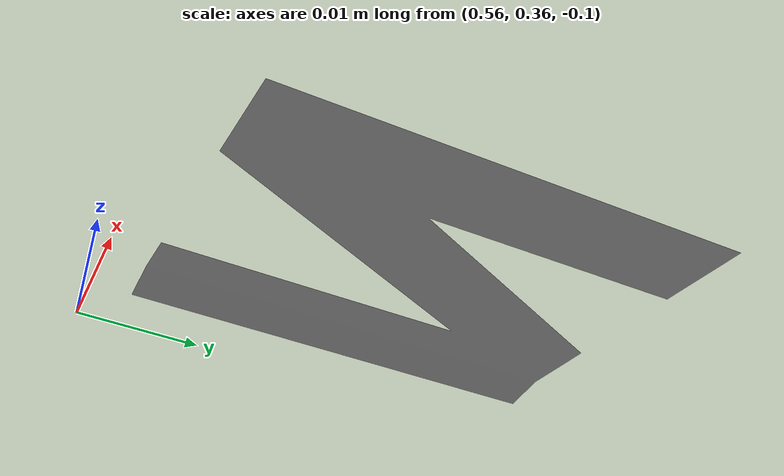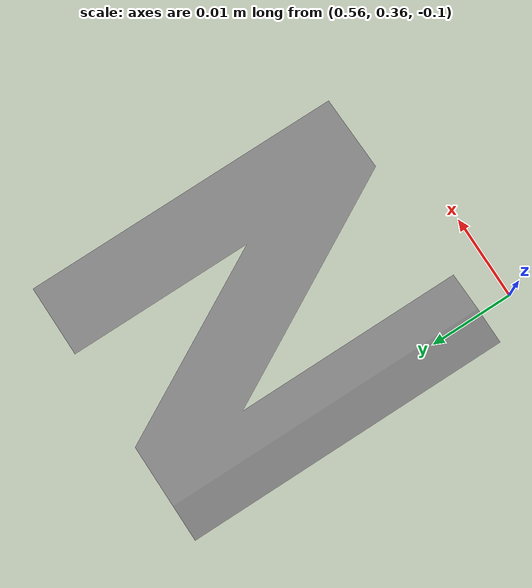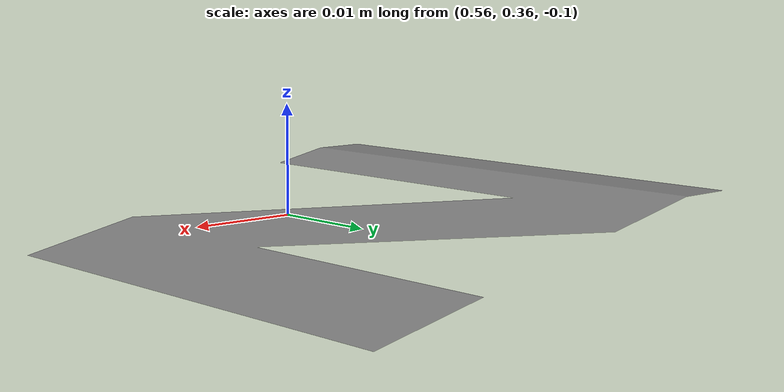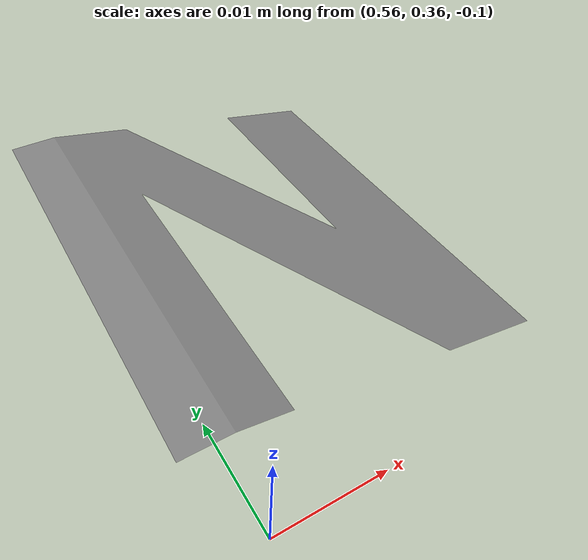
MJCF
<mujoco model="original-115">
  <default>
    <default class="visual">
      <geom group="2" type="mesh" contype="0" conaffinity="0"/>
    </default>
    <default class="collision">
      <geom group="3" type="mesh"/>
    </default>
  </default>
  <asset>
    <material name="material_0_0" specular="0.06666666666666667" shininess="0.03" rgba="0.5294117647058824 0.5294117647058824 0.5294117647058824 1"/>
    <mesh file="original-115.obj"/>
  </asset>
  <worldbody>
    <body name="original-115">
      <geom material="material_0_0" mesh="original-115" class="visual"/>
      <geom mesh="original-115" class="collision"/>
    </body>
  </worldbody>
</mujoco>
